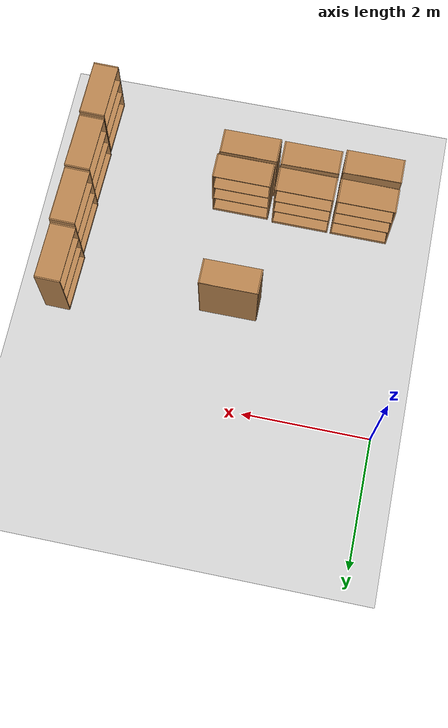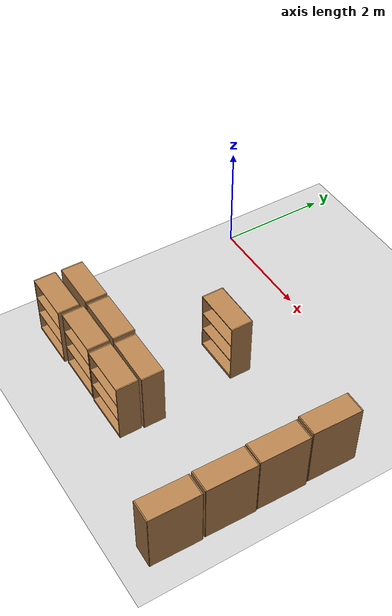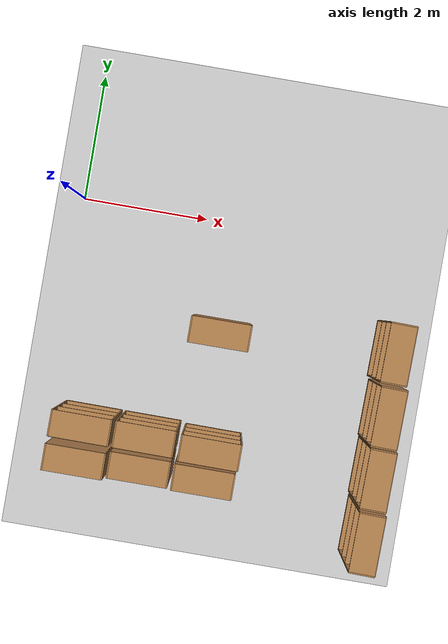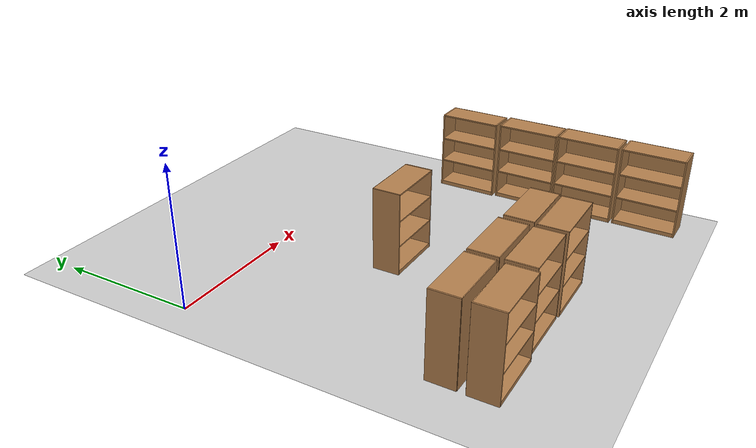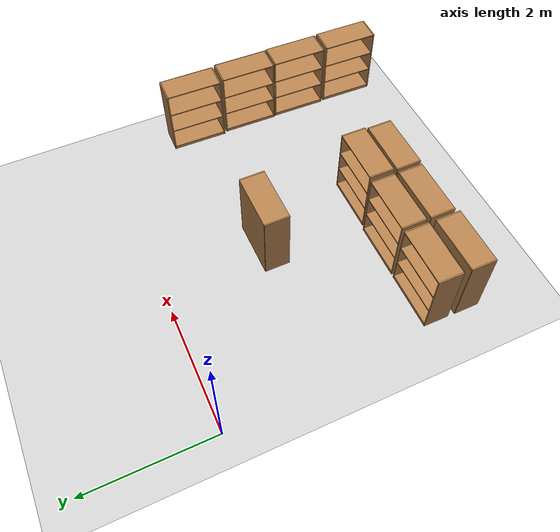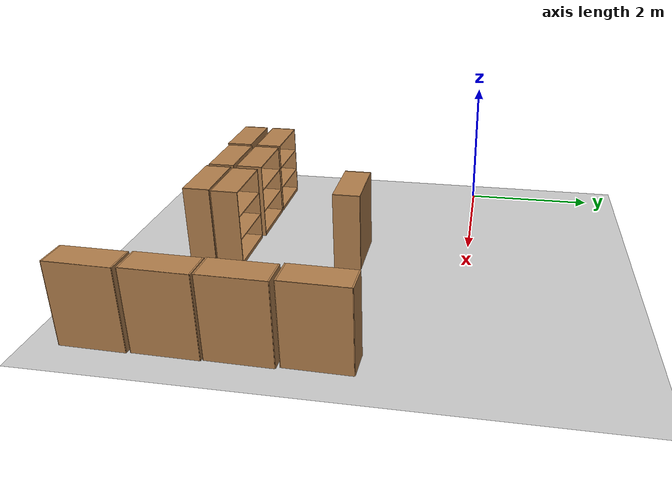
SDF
<sdf version="1.7">
 <world name="default">
  <model name="ground_plane">
   <static>1</static>
   <link name="link">
    <collision name="collision">
     <geometry><plane><normal>0 0 1</normal><size>100 100</size></plane></geometry>
     <surface>
      <contact><collide_bitmask>65535</collide_bitmask></contact>
      <friction><ode><mu>100</mu><mu2>50</mu2></ode></friction>
     </surface>
    </collision>
    <visual name="visual">
     <cast_shadows>0</cast_shadows>
     <geometry><plane><normal>0 0 1</normal><size>100 100</size></plane></geometry>
     <material>
      <script><uri>file://media/materials/scripts/gazebo.material</uri><name>Gazebo/Grey</name></script>
     </material>
    </visual>
   </link>
  </model>
  <model name="bookshelf_clone_clone_0">
   <static>1</static>
   <link name="link">
    <inertial><mass>1</mass></inertial>
    <collision name="back">
     <pose>0 0.005 0.6 0 -0 0</pose>
     <geometry><box><size>0.9 0.01 1.2</size></box></geometry>
    </collision>
    <visual name="visual1">
     <pose>0 0.005 0.6 0 -0 0</pose>
     <geometry><box><size>0.9 0.01 1.2</size></box></geometry>
     <material>
      <script><uri>file://media/materials/scripts/gazebo.material</uri><name>Gazebo/Wood</name></script>
     </material>
    </visual>
    <collision name="left_side">
     <pose>0.45 -0.195 0.6 0 -0 0</pose>
     <geometry><box><size>0.02 0.4 1.2</size></box></geometry>
    </collision>
    <visual name="visual2">
     <pose>0.45 -0.195 0.6 0 -0 0</pose>
     <geometry><box><size>0.02 0.4 1.2</size></box></geometry>
     <material>
      <script><uri>file://media/materials/scripts/gazebo.material</uri><name>Gazebo/Wood</name></script>
     </material>
    </visual>
    <collision name="right_side">
     <pose>-0.45 -0.195 0.6 0 -0 0</pose>
     <geometry><box><size>0.02 0.4 1.2</size></box></geometry>
    </collision>
    <visual name="visual3">
     <pose>-0.45 -0.195 0.6 0 -0 0</pose>
     <geometry><box><size>0.02 0.4 1.2</size></box></geometry>
     <material>
      <script><uri>file://media/materials/scripts/gazebo.material</uri><name>Gazebo/Wood</name></script>
     </material>
    </visual>
    <collision name="bottom">
     <pose>0 -0.195 0.03 0 -0 0</pose>
     <geometry><box><size>0.88 0.4 0.06</size></box></geometry>
    </collision>
    <visual name="visual4">
     <pose>0 -0.195 0.03 0 -0 0</pose>
     <geometry><box><size>0.88 0.4 0.06</size></box></geometry>
     <material>
      <script><uri>file://media/materials/scripts/gazebo.material</uri><name>Gazebo/Wood</name></script>
     </material>
    </visual>
    <collision name="top">
     <pose>0 -0.195 1.19 0 -0 0</pose>
     <geometry><box><size>0.88 0.4 0.02</size></box></geometry>
    </collision>
    <visual name="visual5">
     <pose>0 -0.195 1.19 0 -0 0</pose>
     <geometry><box><size>0.88 0.4 0.02</size></box></geometry>
     <material>
      <script><uri>file://media/materials/scripts/gazebo.material</uri><name>Gazebo/Wood</name></script>
     </material>
    </visual>
    <collision name="low_shelf">
     <pose>0 -0.195 0.43 0 -0 0</pose>
     <geometry><box><size>0.88 0.4 0.02</size></box></geometry>
    </collision>
    <visual name="visual6">
     <pose>0 -0.195 0.43 0 -0 0</pose>
     <geometry><box><size>0.88 0.4 0.02</size></box></geometry>
     <material>
      <script><uri>file://media/materials/scripts/gazebo.material</uri><name>Gazebo/Wood</name></script>
     </material>
    </visual>
    <collision name="high_shelf">
     <pose>0 -0.195 0.8 0 -0 0</pose>
     <geometry><box><size>0.88 0.4 0.02</size></box></geometry>
    </collision>
    <visual name="visual7">
     <pose>0 -0.195 0.8 0 -0 0</pose>
     <geometry><box><size>0.88 0.4 0.02</size></box></geometry>
     <material>
      <script><uri>file://media/materials/scripts/gazebo.material</uri><name>Gazebo/Wood</name></script>
     </material>
    </visual>
   </link>
   <pose>2.52478 -1.54537 0 0 -0 0</pose>
  </model>
  <model name="bookshelf_2_clone_4">
   <static>1</static>
   <link name="link">
    <inertial><mass>1</mass></inertial>
    <collision name="back">
     <pose>0 0.005 0.6 0 -0 0</pose>
     <geometry><box><size>0.9 0.01 1.2</size></box></geometry>
    </collision>
    <visual name="visual1">
     <pose>0 0.005 0.6 0 -0 0</pose>
     <geometry><box><size>0.9 0.01 1.2</size></box></geometry>
     <material>
      <script><uri>file://media/materials/scripts/gazebo.material</uri><name>Gazebo/Wood</name></script>
     </material>
    </visual>
    <collision name="left_side">
     <pose>0.45 -0.195 0.6 0 -0 0</pose>
     <geometry><box><size>0.02 0.4 1.2</size></box></geometry>
    </collision>
    <visual name="visual2">
     <pose>0.45 -0.195 0.6 0 -0 0</pose>
     <geometry><box><size>0.02 0.4 1.2</size></box></geometry>
     <material>
      <script><uri>file://media/materials/scripts/gazebo.material</uri><name>Gazebo/Wood</name></script>
     </material>
    </visual>
    <collision name="right_side">
     <pose>-0.45 -0.195 0.6 0 -0 0</pose>
     <geometry><box><size>0.02 0.4 1.2</size></box></geometry>
    </collision>
    <visual name="visual3">
     <pose>-0.45 -0.195 0.6 0 -0 0</pose>
     <geometry><box><size>0.02 0.4 1.2</size></box></geometry>
     <material>
      <script><uri>file://media/materials/scripts/gazebo.material</uri><name>Gazebo/Wood</name></script>
     </material>
    </visual>
    <collision name="bottom">
     <pose>0 -0.195 0.03 0 -0 0</pose>
     <geometry><box><size>0.88 0.4 0.06</size></box></geometry>
    </collision>
    <visual name="visual4">
     <pose>0 -0.195 0.03 0 -0 0</pose>
     <geometry><box><size>0.88 0.4 0.06</size></box></geometry>
     <material>
      <script><uri>file://media/materials/scripts/gazebo.material</uri><name>Gazebo/Wood</name></script>
     </material>
    </visual>
    <collision name="top">
     <pose>0 -0.195 1.19 0 -0 0</pose>
     <geometry><box><size>0.88 0.4 0.02</size></box></geometry>
    </collision>
    <visual name="visual5">
     <pose>0 -0.195 1.19 0 -0 0</pose>
     <geometry><box><size>0.88 0.4 0.02</size></box></geometry>
     <material>
      <script><uri>file://media/materials/scripts/gazebo.material</uri><name>Gazebo/Wood</name></script>
     </material>
    </visual>
    <collision name="low_shelf">
     <pose>0 -0.195 0.43 0 -0 0</pose>
     <geometry><box><size>0.88 0.4 0.02</size></box></geometry>
    </collision>
    <visual name="visual6">
     <pose>0 -0.195 0.43 0 -0 0</pose>
     <geometry><box><size>0.88 0.4 0.02</size></box></geometry>
     <material>
      <script><uri>file://media/materials/scripts/gazebo.material</uri><name>Gazebo/Wood</name></script>
     </material>
    </visual>
    <collision name="high_shelf">
     <pose>0 -0.195 0.8 0 -0 0</pose>
     <geometry><box><size>0.88 0.4 0.02</size></box></geometry>
    </collision>
    <visual name="visual7">
     <pose>0 -0.195 0.8 0 -0 0</pose>
     <geometry><box><size>0.88 0.4 0.02</size></box></geometry>
     <material>
      <script><uri>file://media/materials/scripts/gazebo.material</uri><name>Gazebo/Wood</name></script>
     </material>
    </visual>
   </link>
   <pose>2.67351 -3.69975 0 0 -0 3.13622</pose>
  </model>
  <model name="bookshelf_clone_clone_1">
   <static>1</static>
   <link name="link">
    <inertial><mass>1</mass></inertial>
    <collision name="back">
     <pose>0 0.005 0.6 0 -0 0</pose>
     <geometry><box><size>0.9 0.01 1.2</size></box></geometry>
    </collision>
    <visual name="visual1">
     <pose>0 0.005 0.6 0 -0 0</pose>
     <geometry><box><size>0.9 0.01 1.2</size></box></geometry>
     <material>
      <script><uri>file://media/materials/scripts/gazebo.material</uri><name>Gazebo/Wood</name></script>
     </material>
    </visual>
    <collision name="left_side">
     <pose>0.45 -0.195 0.6 0 -0 0</pose>
     <geometry><box><size>0.02 0.4 1.2</size></box></geometry>
    </collision>
    <visual name="visual2">
     <pose>0.45 -0.195 0.6 0 -0 0</pose>
     <geometry><box><size>0.02 0.4 1.2</size></box></geometry>
     <material>
      <script><uri>file://media/materials/scripts/gazebo.material</uri><name>Gazebo/Wood</name></script>
     </material>
    </visual>
    <collision name="right_side">
     <pose>-0.45 -0.195 0.6 0 -0 0</pose>
     <geometry><box><size>0.02 0.4 1.2</size></box></geometry>
    </collision>
    <visual name="visual3">
     <pose>-0.45 -0.195 0.6 0 -0 0</pose>
     <geometry><box><size>0.02 0.4 1.2</size></box></geometry>
     <material>
      <script><uri>file://media/materials/scripts/gazebo.material</uri><name>Gazebo/Wood</name></script>
     </material>
    </visual>
    <collision name="bottom">
     <pose>0 -0.195 0.03 0 -0 0</pose>
     <geometry><box><size>0.88 0.4 0.06</size></box></geometry>
    </collision>
    <visual name="visual4">
     <pose>0 -0.195 0.03 0 -0 0</pose>
     <geometry><box><size>0.88 0.4 0.06</size></box></geometry>
     <material>
      <script><uri>file://media/materials/scripts/gazebo.material</uri><name>Gazebo/Wood</name></script>
     </material>
    </visual>
    <collision name="top">
     <pose>0 -0.195 1.19 0 -0 0</pose>
     <geometry><box><size>0.88 0.4 0.02</size></box></geometry>
    </collision>
    <visual name="visual5">
     <pose>0 -0.195 1.19 0 -0 0</pose>
     <geometry><box><size>0.88 0.4 0.02</size></box></geometry>
     <material>
      <script><uri>file://media/materials/scripts/gazebo.material</uri><name>Gazebo/Wood</name></script>
     </material>
    </visual>
    <collision name="low_shelf">
     <pose>0 -0.195 0.43 0 -0 0</pose>
     <geometry><box><size>0.88 0.4 0.02</size></box></geometry>
    </collision>
    <visual name="visual6">
     <pose>0 -0.195 0.43 0 -0 0</pose>
     <geometry><box><size>0.88 0.4 0.02</size></box></geometry>
     <material>
      <script><uri>file://media/materials/scripts/gazebo.material</uri><name>Gazebo/Wood</name></script>
     </material>
    </visual>
    <collision name="high_shelf">
     <pose>0 -0.195 0.8 0 -0 0</pose>
     <geometry><box><size>0.88 0.4 0.02</size></box></geometry>
    </collision>
    <visual name="visual7">
     <pose>0 -0.195 0.8 0 -0 0</pose>
     <geometry><box><size>0.88 0.4 0.02</size></box></geometry>
     <material>
      <script><uri>file://media/materials/scripts/gazebo.material</uri><name>Gazebo/Wood</name></script>
     </material>
    </visual>
   </link>
   <pose>2.6482 -3.75149 0 0 -0 0</pose>
  </model>
  <model name="bookshelf_2_clone_clone">
   <static>1</static>
   <link name="link">
    <inertial><mass>1</mass></inertial>
    <collision name="back">
     <pose>0 0.005 0.6 0 -0 0</pose>
     <geometry><box><size>0.9 0.01 1.2</size></box></geometry>
    </collision>
    <visual name="visual1">
     <pose>0 0.005 0.6 0 -0 0</pose>
     <geometry><box><size>0.9 0.01 1.2</size></box></geometry>
     <material>
      <script><uri>file://media/materials/scripts/gazebo.material</uri><name>Gazebo/Wood</name></script>
     </material>
    </visual>
    <collision name="left_side">
     <pose>0.45 -0.195 0.6 0 -0 0</pose>
     <geometry><box><size>0.02 0.4 1.2</size></box></geometry>
    </collision>
    <visual name="visual2">
     <pose>0.45 -0.195 0.6 0 -0 0</pose>
     <geometry><box><size>0.02 0.4 1.2</size></box></geometry>
     <material>
      <script><uri>file://media/materials/scripts/gazebo.material</uri><name>Gazebo/Wood</name></script>
     </material>
    </visual>
    <collision name="right_side">
     <pose>-0.45 -0.195 0.6 0 -0 0</pose>
     <geometry><box><size>0.02 0.4 1.2</size></box></geometry>
    </collision>
    <visual name="visual3">
     <pose>-0.45 -0.195 0.6 0 -0 0</pose>
     <geometry><box><size>0.02 0.4 1.2</size></box></geometry>
     <material>
      <script><uri>file://media/materials/scripts/gazebo.material</uri><name>Gazebo/Wood</name></script>
     </material>
    </visual>
    <collision name="bottom">
     <pose>0 -0.195 0.03 0 -0 0</pose>
     <geometry><box><size>0.88 0.4 0.06</size></box></geometry>
    </collision>
    <visual name="visual4">
     <pose>0 -0.195 0.03 0 -0 0</pose>
     <geometry><box><size>0.88 0.4 0.06</size></box></geometry>
     <material>
      <script><uri>file://media/materials/scripts/gazebo.material</uri><name>Gazebo/Wood</name></script>
     </material>
    </visual>
    <collision name="top">
     <pose>0 -0.195 1.19 0 -0 0</pose>
     <geometry><box><size>0.88 0.4 0.02</size></box></geometry>
    </collision>
    <visual name="visual5">
     <pose>0 -0.195 1.19 0 -0 0</pose>
     <geometry><box><size>0.88 0.4 0.02</size></box></geometry>
     <material>
      <script><uri>file://media/materials/scripts/gazebo.material</uri><name>Gazebo/Wood</name></script>
     </material>
    </visual>
    <collision name="low_shelf">
     <pose>0 -0.195 0.43 0 -0 0</pose>
     <geometry><box><size>0.88 0.4 0.02</size></box></geometry>
    </collision>
    <visual name="visual6">
     <pose>0 -0.195 0.43 0 -0 0</pose>
     <geometry><box><size>0.88 0.4 0.02</size></box></geometry>
     <material>
      <script><uri>file://media/materials/scripts/gazebo.material</uri><name>Gazebo/Wood</name></script>
     </material>
    </visual>
    <collision name="high_shelf">
     <pose>0 -0.195 0.8 0 -0 0</pose>
     <geometry><box><size>0.88 0.4 0.02</size></box></geometry>
    </collision>
    <visual name="visual7">
     <pose>0 -0.195 0.8 0 -0 0</pose>
     <geometry><box><size>0.88 0.4 0.02</size></box></geometry>
     <material>
      <script><uri>file://media/materials/scripts/gazebo.material</uri><name>Gazebo/Wood</name></script>
     </material>
    </visual>
   </link>
   <pose>1.68191 -3.66271 0 0 -0 3.13622</pose>
  </model>
  <model name="bookshelf_2_clone_clone_0">
   <static>1</static>
   <link name="link">
    <inertial><mass>1</mass></inertial>
    <collision name="back">
     <pose>0 0.005 0.6 0 -0 0</pose>
     <geometry><box><size>0.9 0.01 1.2</size></box></geometry>
    </collision>
    <visual name="visual1">
     <pose>0 0.005 0.6 0 -0 0</pose>
     <geometry><box><size>0.9 0.01 1.2</size></box></geometry>
     <material>
      <script><uri>file://media/materials/scripts/gazebo.material</uri><name>Gazebo/Wood</name></script>
     </material>
    </visual>
    <collision name="left_side">
     <pose>0.45 -0.195 0.6 0 -0 0</pose>
     <geometry><box><size>0.02 0.4 1.2</size></box></geometry>
    </collision>
    <visual name="visual2">
     <pose>0.45 -0.195 0.6 0 -0 0</pose>
     <geometry><box><size>0.02 0.4 1.2</size></box></geometry>
     <material>
      <script><uri>file://media/materials/scripts/gazebo.material</uri><name>Gazebo/Wood</name></script>
     </material>
    </visual>
    <collision name="right_side">
     <pose>-0.45 -0.195 0.6 0 -0 0</pose>
     <geometry><box><size>0.02 0.4 1.2</size></box></geometry>
    </collision>
    <visual name="visual3">
     <pose>-0.45 -0.195 0.6 0 -0 0</pose>
     <geometry><box><size>0.02 0.4 1.2</size></box></geometry>
     <material>
      <script><uri>file://media/materials/scripts/gazebo.material</uri><name>Gazebo/Wood</name></script>
     </material>
    </visual>
    <collision name="bottom">
     <pose>0 -0.195 0.03 0 -0 0</pose>
     <geometry><box><size>0.88 0.4 0.06</size></box></geometry>
    </collision>
    <visual name="visual4">
     <pose>0 -0.195 0.03 0 -0 0</pose>
     <geometry><box><size>0.88 0.4 0.06</size></box></geometry>
     <material>
      <script><uri>file://media/materials/scripts/gazebo.material</uri><name>Gazebo/Wood</name></script>
     </material>
    </visual>
    <collision name="top">
     <pose>0 -0.195 1.19 0 -0 0</pose>
     <geometry><box><size>0.88 0.4 0.02</size></box></geometry>
    </collision>
    <visual name="visual5">
     <pose>0 -0.195 1.19 0 -0 0</pose>
     <geometry><box><size>0.88 0.4 0.02</size></box></geometry>
     <material>
      <script><uri>file://media/materials/scripts/gazebo.material</uri><name>Gazebo/Wood</name></script>
     </material>
    </visual>
    <collision name="low_shelf">
     <pose>0 -0.195 0.43 0 -0 0</pose>
     <geometry><box><size>0.88 0.4 0.02</size></box></geometry>
    </collision>
    <visual name="visual6">
     <pose>0 -0.195 0.43 0 -0 0</pose>
     <geometry><box><size>0.88 0.4 0.02</size></box></geometry>
     <material>
      <script><uri>file://media/materials/scripts/gazebo.material</uri><name>Gazebo/Wood</name></script>
     </material>
    </visual>
    <collision name="high_shelf">
     <pose>0 -0.195 0.8 0 -0 0</pose>
     <geometry><box><size>0.88 0.4 0.02</size></box></geometry>
    </collision>
    <visual name="visual7">
     <pose>0 -0.195 0.8 0 -0 0</pose>
     <geometry><box><size>0.88 0.4 0.02</size></box></geometry>
     <material>
      <script><uri>file://media/materials/scripts/gazebo.material</uri><name>Gazebo/Wood</name></script>
     </material>
    </visual>
   </link>
   <pose>0.715126 -3.6559 0 0 -0 3.13622</pose>
  </model>
  <model name="bookshelf_clone_clone_clone_0_clone">
   <static>1</static>
   <link name="link">
    <inertial><mass>1</mass></inertial>
    <collision name="back">
     <pose>0 0.005 0.6 0 -0 0</pose>
     <geometry><box><size>0.9 0.01 1.2</size></box></geometry>
    </collision>
    <visual name="visual1">
     <pose>0 0.005 0.6 0 -0 0</pose>
     <geometry><box><size>0.9 0.01 1.2</size></box></geometry>
     <material>
      <script><uri>file://media/materials/scripts/gazebo.material</uri><name>Gazebo/Wood</name></script>
     </material>
    </visual>
    <collision name="left_side">
     <pose>0.45 -0.195 0.6 0 -0 0</pose>
     <geometry><box><size>0.02 0.4 1.2</size></box></geometry>
    </collision>
    <visual name="visual2">
     <pose>0.45 -0.195 0.6 0 -0 0</pose>
     <geometry><box><size>0.02 0.4 1.2</size></box></geometry>
     <material>
      <script><uri>file://media/materials/scripts/gazebo.material</uri><name>Gazebo/Wood</name></script>
     </material>
    </visual>
    <collision name="right_side">
     <pose>-0.45 -0.195 0.6 0 -0 0</pose>
     <geometry><box><size>0.02 0.4 1.2</size></box></geometry>
    </collision>
    <visual name="visual3">
     <pose>-0.45 -0.195 0.6 0 -0 0</pose>
     <geometry><box><size>0.02 0.4 1.2</size></box></geometry>
     <material>
      <script><uri>file://media/materials/scripts/gazebo.material</uri><name>Gazebo/Wood</name></script>
     </material>
    </visual>
    <collision name="bottom">
     <pose>0 -0.195 0.03 0 -0 0</pose>
     <geometry><box><size>0.88 0.4 0.06</size></box></geometry>
    </collision>
    <visual name="visual4">
     <pose>0 -0.195 0.03 0 -0 0</pose>
     <geometry><box><size>0.88 0.4 0.06</size></box></geometry>
     <material>
      <script><uri>file://media/materials/scripts/gazebo.material</uri><name>Gazebo/Wood</name></script>
     </material>
    </visual>
    <collision name="top">
     <pose>0 -0.195 1.19 0 -0 0</pose>
     <geometry><box><size>0.88 0.4 0.02</size></box></geometry>
    </collision>
    <visual name="visual5">
     <pose>0 -0.195 1.19 0 -0 0</pose>
     <geometry><box><size>0.88 0.4 0.02</size></box></geometry>
     <material>
      <script><uri>file://media/materials/scripts/gazebo.material</uri><name>Gazebo/Wood</name></script>
     </material>
    </visual>
    <collision name="low_shelf">
     <pose>0 -0.195 0.43 0 -0 0</pose>
     <geometry><box><size>0.88 0.4 0.02</size></box></geometry>
    </collision>
    <visual name="visual6">
     <pose>0 -0.195 0.43 0 -0 0</pose>
     <geometry><box><size>0.88 0.4 0.02</size></box></geometry>
     <material>
      <script><uri>file://media/materials/scripts/gazebo.material</uri><name>Gazebo/Wood</name></script>
     </material>
    </visual>
    <collision name="high_shelf">
     <pose>0 -0.195 0.8 0 -0 0</pose>
     <geometry><box><size>0.88 0.4 0.02</size></box></geometry>
    </collision>
    <visual name="visual7">
     <pose>0 -0.195 0.8 0 -0 0</pose>
     <geometry><box><size>0.88 0.4 0.02</size></box></geometry>
     <material>
      <script><uri>file://media/materials/scripts/gazebo.material</uri><name>Gazebo/Wood</name></script>
     </material>
    </visual>
   </link>
   <pose>1.67784 -3.7341 0 0 -0 0</pose>
  </model>
  <model name="bookshelf_clone_clone_clone_0_clone_0">
   <static>1</static>
   <link name="link">
    <inertial><mass>1</mass></inertial>
    <collision name="back">
     <pose>0 0.005 0.6 0 -0 0</pose>
     <geometry><box><size>0.9 0.01 1.2</size></box></geometry>
    </collision>
    <visual name="visual1">
     <pose>0 0.005 0.6 0 -0 0</pose>
     <geometry><box><size>0.9 0.01 1.2</size></box></geometry>
     <material>
      <script><uri>file://media/materials/scripts/gazebo.material</uri><name>Gazebo/Wood</name></script>
     </material>
    </visual>
    <collision name="left_side">
     <pose>0.45 -0.195 0.6 0 -0 0</pose>
     <geometry><box><size>0.02 0.4 1.2</size></box></geometry>
    </collision>
    <visual name="visual2">
     <pose>0.45 -0.195 0.6 0 -0 0</pose>
     <geometry><box><size>0.02 0.4 1.2</size></box></geometry>
     <material>
      <script><uri>file://media/materials/scripts/gazebo.material</uri><name>Gazebo/Wood</name></script>
     </material>
    </visual>
    <collision name="right_side">
     <pose>-0.45 -0.195 0.6 0 -0 0</pose>
     <geometry><box><size>0.02 0.4 1.2</size></box></geometry>
    </collision>
    <visual name="visual3">
     <pose>-0.45 -0.195 0.6 0 -0 0</pose>
     <geometry><box><size>0.02 0.4 1.2</size></box></geometry>
     <material>
      <script><uri>file://media/materials/scripts/gazebo.material</uri><name>Gazebo/Wood</name></script>
     </material>
    </visual>
    <collision name="bottom">
     <pose>0 -0.195 0.03 0 -0 0</pose>
     <geometry><box><size>0.88 0.4 0.06</size></box></geometry>
    </collision>
    <visual name="visual4">
     <pose>0 -0.195 0.03 0 -0 0</pose>
     <geometry><box><size>0.88 0.4 0.06</size></box></geometry>
     <material>
      <script><uri>file://media/materials/scripts/gazebo.material</uri><name>Gazebo/Wood</name></script>
     </material>
    </visual>
    <collision name="top">
     <pose>0 -0.195 1.19 0 -0 0</pose>
     <geometry><box><size>0.88 0.4 0.02</size></box></geometry>
    </collision>
    <visual name="visual5">
     <pose>0 -0.195 1.19 0 -0 0</pose>
     <geometry><box><size>0.88 0.4 0.02</size></box></geometry>
     <material>
      <script><uri>file://media/materials/scripts/gazebo.material</uri><name>Gazebo/Wood</name></script>
     </material>
    </visual>
    <collision name="low_shelf">
     <pose>0 -0.195 0.43 0 -0 0</pose>
     <geometry><box><size>0.88 0.4 0.02</size></box></geometry>
    </collision>
    <visual name="visual6">
     <pose>0 -0.195 0.43 0 -0 0</pose>
     <geometry><box><size>0.88 0.4 0.02</size></box></geometry>
     <material>
      <script><uri>file://media/materials/scripts/gazebo.material</uri><name>Gazebo/Wood</name></script>
     </material>
    </visual>
    <collision name="high_shelf">
     <pose>0 -0.195 0.8 0 -0 0</pose>
     <geometry><box><size>0.88 0.4 0.02</size></box></geometry>
    </collision>
    <visual name="visual7">
     <pose>0 -0.195 0.8 0 -0 0</pose>
     <geometry><box><size>0.88 0.4 0.02</size></box></geometry>
     <material>
      <script><uri>file://media/materials/scripts/gazebo.material</uri><name>Gazebo/Wood</name></script>
     </material>
    </visual>
   </link>
   <pose>0.708118 -3.77653 0 0 -0 0</pose>
  </model>
  <model name="bookshelf_3_clone_3">
   <static>1</static>
   <link name="link">
    <inertial><mass>1</mass></inertial>
    <collision name="back">
     <pose>0 0.005 0.6 0 -0 0</pose>
     <geometry><box><size>0.9 0.01 1.2</size></box></geometry>
    </collision>
    <visual name="visual1">
     <pose>0 0.005 0.6 0 -0 0</pose>
     <geometry><box><size>0.9 0.01 1.2</size></box></geometry>
     <material>
      <script><uri>file://media/materials/scripts/gazebo.material</uri><name>Gazebo/Wood</name></script>
     </material>
    </visual>
    <collision name="left_side">
     <pose>0.45 -0.195 0.6 0 -0 0</pose>
     <geometry><box><size>0.02 0.4 1.2</size></box></geometry>
    </collision>
    <visual name="visual2">
     <pose>0.45 -0.195 0.6 0 -0 0</pose>
     <geometry><box><size>0.02 0.4 1.2</size></box></geometry>
     <material>
      <script><uri>file://media/materials/scripts/gazebo.material</uri><name>Gazebo/Wood</name></script>
     </material>
    </visual>
    <collision name="right_side">
     <pose>-0.45 -0.195 0.6 0 -0 0</pose>
     <geometry><box><size>0.02 0.4 1.2</size></box></geometry>
    </collision>
    <visual name="visual3">
     <pose>-0.45 -0.195 0.6 0 -0 0</pose>
     <geometry><box><size>0.02 0.4 1.2</size></box></geometry>
     <material>
      <script><uri>file://media/materials/scripts/gazebo.material</uri><name>Gazebo/Wood</name></script>
     </material>
    </visual>
    <collision name="bottom">
     <pose>0 -0.195 0.03 0 -0 0</pose>
     <geometry><box><size>0.88 0.4 0.06</size></box></geometry>
    </collision>
    <visual name="visual4">
     <pose>0 -0.195 0.03 0 -0 0</pose>
     <geometry><box><size>0.88 0.4 0.06</size></box></geometry>
     <material>
      <script><uri>file://media/materials/scripts/gazebo.material</uri><name>Gazebo/Wood</name></script>
     </material>
    </visual>
    <collision name="top">
     <pose>0 -0.195 1.19 0 -0 0</pose>
     <geometry><box><size>0.88 0.4 0.02</size></box></geometry>
    </collision>
    <visual name="visual5">
     <pose>0 -0.195 1.19 0 -0 0</pose>
     <geometry><box><size>0.88 0.4 0.02</size></box></geometry>
     <material>
      <script><uri>file://media/materials/scripts/gazebo.material</uri><name>Gazebo/Wood</name></script>
     </material>
    </visual>
    <collision name="low_shelf">
     <pose>0 -0.195 0.43 0 -0 0</pose>
     <geometry><box><size>0.88 0.4 0.02</size></box></geometry>
    </collision>
    <visual name="visual6">
     <pose>0 -0.195 0.43 0 -0 0</pose>
     <geometry><box><size>0.88 0.4 0.02</size></box></geometry>
     <material>
      <script><uri>file://media/materials/scripts/gazebo.material</uri><name>Gazebo/Wood</name></script>
     </material>
    </visual>
    <collision name="high_shelf">
     <pose>0 -0.195 0.8 0 -0 0</pose>
     <geometry><box><size>0.88 0.4 0.02</size></box></geometry>
    </collision>
    <visual name="visual7">
     <pose>0 -0.195 0.8 0 -0 0</pose>
     <geometry><box><size>0.88 0.4 0.02</size></box></geometry>
     <material>
      <script><uri>file://media/materials/scripts/gazebo.material</uri><name>Gazebo/Wood</name></script>
     </material>
    </visual>
   </link>
   <pose>5.38593 -1.59971 0 0 0 -1.59113</pose>
  </model>
  <model name="bookshelf_3_clone_4">
   <static>1</static>
   <link name="link">
    <inertial><mass>1</mass></inertial>
    <collision name="back">
     <pose>0 0.005 0.6 0 -0 0</pose>
     <geometry><box><size>0.9 0.01 1.2</size></box></geometry>
    </collision>
    <visual name="visual1">
     <pose>0 0.005 0.6 0 -0 0</pose>
     <geometry><box><size>0.9 0.01 1.2</size></box></geometry>
     <material>
      <script><uri>file://media/materials/scripts/gazebo.material</uri><name>Gazebo/Wood</name></script>
     </material>
    </visual>
    <collision name="left_side">
     <pose>0.45 -0.195 0.6 0 -0 0</pose>
     <geometry><box><size>0.02 0.4 1.2</size></box></geometry>
    </collision>
    <visual name="visual2">
     <pose>0.45 -0.195 0.6 0 -0 0</pose>
     <geometry><box><size>0.02 0.4 1.2</size></box></geometry>
     <material>
      <script><uri>file://media/materials/scripts/gazebo.material</uri><name>Gazebo/Wood</name></script>
     </material>
    </visual>
    <collision name="right_side">
     <pose>-0.45 -0.195 0.6 0 -0 0</pose>
     <geometry><box><size>0.02 0.4 1.2</size></box></geometry>
    </collision>
    <visual name="visual3">
     <pose>-0.45 -0.195 0.6 0 -0 0</pose>
     <geometry><box><size>0.02 0.4 1.2</size></box></geometry>
     <material>
      <script><uri>file://media/materials/scripts/gazebo.material</uri><name>Gazebo/Wood</name></script>
     </material>
    </visual>
    <collision name="bottom">
     <pose>0 -0.195 0.03 0 -0 0</pose>
     <geometry><box><size>0.88 0.4 0.06</size></box></geometry>
    </collision>
    <visual name="visual4">
     <pose>0 -0.195 0.03 0 -0 0</pose>
     <geometry><box><size>0.88 0.4 0.06</size></box></geometry>
     <material>
      <script><uri>file://media/materials/scripts/gazebo.material</uri><name>Gazebo/Wood</name></script>
     </material>
    </visual>
    <collision name="top">
     <pose>0 -0.195 1.19 0 -0 0</pose>
     <geometry><box><size>0.88 0.4 0.02</size></box></geometry>
    </collision>
    <visual name="visual5">
     <pose>0 -0.195 1.19 0 -0 0</pose>
     <geometry><box><size>0.88 0.4 0.02</size></box></geometry>
     <material>
      <script><uri>file://media/materials/scripts/gazebo.material</uri><name>Gazebo/Wood</name></script>
     </material>
    </visual>
    <collision name="low_shelf">
     <pose>0 -0.195 0.43 0 -0 0</pose>
     <geometry><box><size>0.88 0.4 0.02</size></box></geometry>
    </collision>
    <visual name="visual6">
     <pose>0 -0.195 0.43 0 -0 0</pose>
     <geometry><box><size>0.88 0.4 0.02</size></box></geometry>
     <material>
      <script><uri>file://media/materials/scripts/gazebo.material</uri><name>Gazebo/Wood</name></script>
     </material>
    </visual>
    <collision name="high_shelf">
     <pose>0 -0.195 0.8 0 -0 0</pose>
     <geometry><box><size>0.88 0.4 0.02</size></box></geometry>
    </collision>
    <visual name="visual7">
     <pose>0 -0.195 0.8 0 -0 0</pose>
     <geometry><box><size>0.88 0.4 0.02</size></box></geometry>
     <material>
      <script><uri>file://media/materials/scripts/gazebo.material</uri><name>Gazebo/Wood</name></script>
     </material>
    </visual>
   </link>
   <pose>5.40098 -2.56062 0 0 0 -1.59113</pose>
  </model>
  <model name="bookshelf_3_clone_5">
   <static>1</static>
   <link name="link">
    <inertial><mass>1</mass></inertial>
    <collision name="back">
     <pose>0 0.005 0.6 0 -0 0</pose>
     <geometry><box><size>0.9 0.01 1.2</size></box></geometry>
    </collision>
    <visual name="visual1">
     <pose>0 0.005 0.6 0 -0 0</pose>
     <geometry><box><size>0.9 0.01 1.2</size></box></geometry>
     <material>
      <script><uri>file://media/materials/scripts/gazebo.material</uri><name>Gazebo/Wood</name></script>
     </material>
    </visual>
    <collision name="left_side">
     <pose>0.45 -0.195 0.6 0 -0 0</pose>
     <geometry><box><size>0.02 0.4 1.2</size></box></geometry>
    </collision>
    <visual name="visual2">
     <pose>0.45 -0.195 0.6 0 -0 0</pose>
     <geometry><box><size>0.02 0.4 1.2</size></box></geometry>
     <material>
      <script><uri>file://media/materials/scripts/gazebo.material</uri><name>Gazebo/Wood</name></script>
     </material>
    </visual>
    <collision name="right_side">
     <pose>-0.45 -0.195 0.6 0 -0 0</pose>
     <geometry><box><size>0.02 0.4 1.2</size></box></geometry>
    </collision>
    <visual name="visual3">
     <pose>-0.45 -0.195 0.6 0 -0 0</pose>
     <geometry><box><size>0.02 0.4 1.2</size></box></geometry>
     <material>
      <script><uri>file://media/materials/scripts/gazebo.material</uri><name>Gazebo/Wood</name></script>
     </material>
    </visual>
    <collision name="bottom">
     <pose>0 -0.195 0.03 0 -0 0</pose>
     <geometry><box><size>0.88 0.4 0.06</size></box></geometry>
    </collision>
    <visual name="visual4">
     <pose>0 -0.195 0.03 0 -0 0</pose>
     <geometry><box><size>0.88 0.4 0.06</size></box></geometry>
     <material>
      <script><uri>file://media/materials/scripts/gazebo.material</uri><name>Gazebo/Wood</name></script>
     </material>
    </visual>
    <collision name="top">
     <pose>0 -0.195 1.19 0 -0 0</pose>
     <geometry><box><size>0.88 0.4 0.02</size></box></geometry>
    </collision>
    <visual name="visual5">
     <pose>0 -0.195 1.19 0 -0 0</pose>
     <geometry><box><size>0.88 0.4 0.02</size></box></geometry>
     <material>
      <script><uri>file://media/materials/scripts/gazebo.material</uri><name>Gazebo/Wood</name></script>
     </material>
    </visual>
    <collision name="low_shelf">
     <pose>0 -0.195 0.43 0 -0 0</pose>
     <geometry><box><size>0.88 0.4 0.02</size></box></geometry>
    </collision>
    <visual name="visual6">
     <pose>0 -0.195 0.43 0 -0 0</pose>
     <geometry><box><size>0.88 0.4 0.02</size></box></geometry>
     <material>
      <script><uri>file://media/materials/scripts/gazebo.material</uri><name>Gazebo/Wood</name></script>
     </material>
    </visual>
    <collision name="high_shelf">
     <pose>0 -0.195 0.8 0 -0 0</pose>
     <geometry><box><size>0.88 0.4 0.02</size></box></geometry>
    </collision>
    <visual name="visual7">
     <pose>0 -0.195 0.8 0 -0 0</pose>
     <geometry><box><size>0.88 0.4 0.02</size></box></geometry>
     <material>
      <script><uri>file://media/materials/scripts/gazebo.material</uri><name>Gazebo/Wood</name></script>
     </material>
    </visual>
   </link>
   <pose>5.3996 -3.49578 0 0 0 -1.59113</pose>
  </model>
  <model name="bookshelf_3_clone_6">
   <static>1</static>
   <link name="link">
    <inertial><mass>1</mass></inertial>
    <collision name="back">
     <pose>0 0.005 0.6 0 -0 0</pose>
     <geometry><box><size>0.9 0.01 1.2</size></box></geometry>
    </collision>
    <visual name="visual1">
     <pose>0 0.005 0.6 0 -0 0</pose>
     <geometry><box><size>0.9 0.01 1.2</size></box></geometry>
     <material>
      <script><uri>file://media/materials/scripts/gazebo.material</uri><name>Gazebo/Wood</name></script>
     </material>
    </visual>
    <collision name="left_side">
     <pose>0.45 -0.195 0.6 0 -0 0</pose>
     <geometry><box><size>0.02 0.4 1.2</size></box></geometry>
    </collision>
    <visual name="visual2">
     <pose>0.45 -0.195 0.6 0 -0 0</pose>
     <geometry><box><size>0.02 0.4 1.2</size></box></geometry>
     <material>
      <script><uri>file://media/materials/scripts/gazebo.material</uri><name>Gazebo/Wood</name></script>
     </material>
    </visual>
    <collision name="right_side">
     <pose>-0.45 -0.195 0.6 0 -0 0</pose>
     <geometry><box><size>0.02 0.4 1.2</size></box></geometry>
    </collision>
    <visual name="visual3">
     <pose>-0.45 -0.195 0.6 0 -0 0</pose>
     <geometry><box><size>0.02 0.4 1.2</size></box></geometry>
     <material>
      <script><uri>file://media/materials/scripts/gazebo.material</uri><name>Gazebo/Wood</name></script>
     </material>
    </visual>
    <collision name="bottom">
     <pose>0 -0.195 0.03 0 -0 0</pose>
     <geometry><box><size>0.88 0.4 0.06</size></box></geometry>
    </collision>
    <visual name="visual4">
     <pose>0 -0.195 0.03 0 -0 0</pose>
     <geometry><box><size>0.88 0.4 0.06</size></box></geometry>
     <material>
      <script><uri>file://media/materials/scripts/gazebo.material</uri><name>Gazebo/Wood</name></script>
     </material>
    </visual>
    <collision name="top">
     <pose>0 -0.195 1.19 0 -0 0</pose>
     <geometry><box><size>0.88 0.4 0.02</size></box></geometry>
    </collision>
    <visual name="visual5">
     <pose>0 -0.195 1.19 0 -0 0</pose>
     <geometry><box><size>0.88 0.4 0.02</size></box></geometry>
     <material>
      <script><uri>file://media/materials/scripts/gazebo.material</uri><name>Gazebo/Wood</name></script>
     </material>
    </visual>
    <collision name="low_shelf">
     <pose>0 -0.195 0.43 0 -0 0</pose>
     <geometry><box><size>0.88 0.4 0.02</size></box></geometry>
    </collision>
    <visual name="visual6">
     <pose>0 -0.195 0.43 0 -0 0</pose>
     <geometry><box><size>0.88 0.4 0.02</size></box></geometry>
     <material>
      <script><uri>file://media/materials/scripts/gazebo.material</uri><name>Gazebo/Wood</name></script>
     </material>
    </visual>
    <collision name="high_shelf">
     <pose>0 -0.195 0.8 0 -0 0</pose>
     <geometry><box><size>0.88 0.4 0.02</size></box></geometry>
    </collision>
    <visual name="visual7">
     <pose>0 -0.195 0.8 0 -0 0</pose>
     <geometry><box><size>0.88 0.4 0.02</size></box></geometry>
     <material>
      <script><uri>file://media/materials/scripts/gazebo.material</uri><name>Gazebo/Wood</name></script>
     </material>
    </visual>
   </link>
   <pose>5.39706 -4.45427 0 0 0 -1.59113</pose>
  </model>
 </world>
</sdf>
